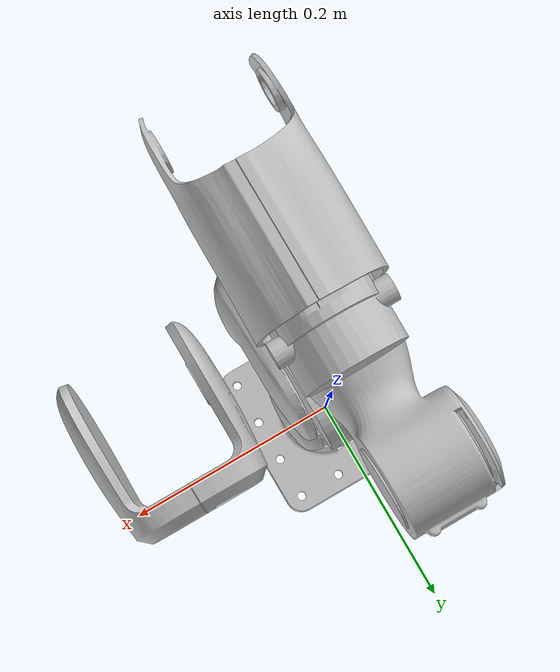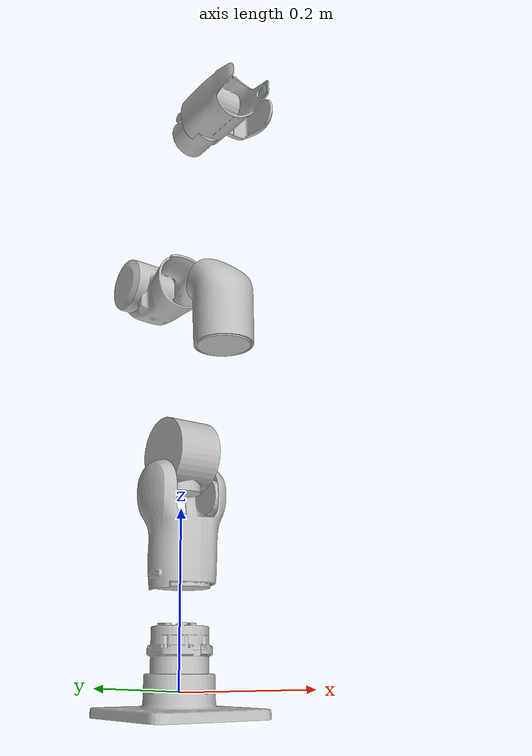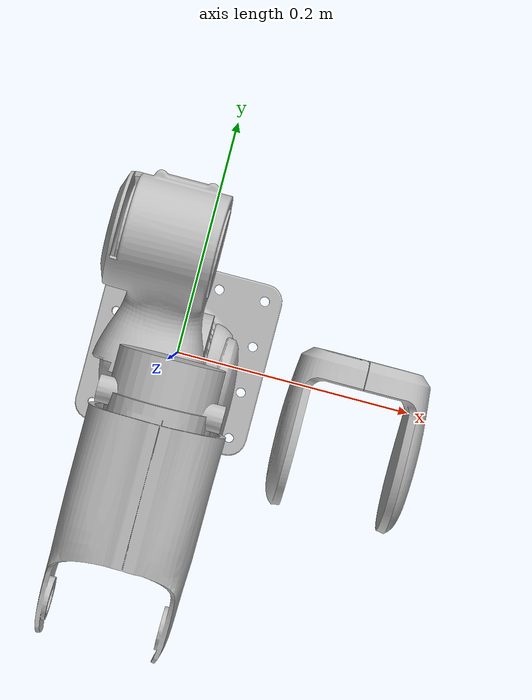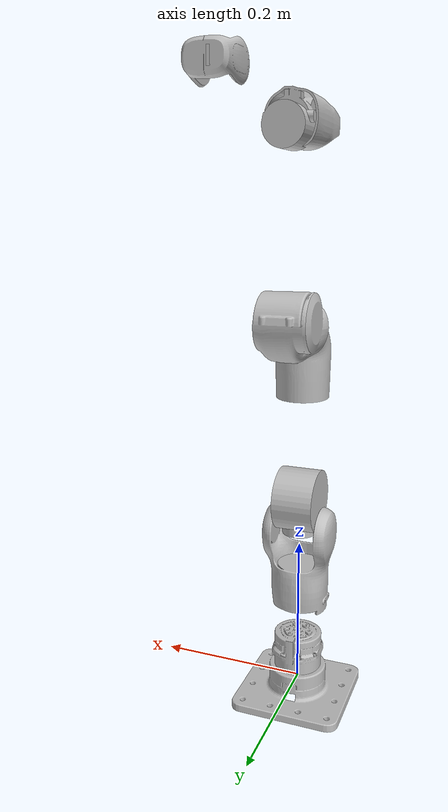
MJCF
<mujoco model="gen72">
  <compiler angle="radian" meshdir="."/>

  <option integrator="implicitfast"/>

  <default>
    <default class="visual">
      <geom type="mesh" contype="0" conaffinity="0" group="2" rgba="0.75294 0.75294 0.75294 1"/>
    </default>
    <default class="collision">
      <geom type="mesh" group="3"/>
    </default>
    <default class="large_actuator">
      <position kp="2000" kv="100" forcerange="-105 105"/>
    </default>
    <default class="small_actuator">
      <position kp="500" kv="50" forcerange="-52 52"/>
    </default>
    <site size="0.001" rgba="0.5 0.5 0.5 0.3" group="4"/>
  </default>

  <asset>
    <mesh name="base_link" file="meshes/base_link.stl"/>
    <mesh name="Link1" file="meshes/Link1.stl"/>
    <mesh name="Link2" file="meshes/Link2.stl"/>
    <mesh name="Link3" file="meshes/Link3.stl"/>
    <mesh name="Link4" file="meshes/Link4.stl"/>
    <mesh name="Link5" file="meshes/Link5.stl"/>
    <mesh name="Link6" file="meshes/Link6.stl"/>
    <mesh name="Link7" file="meshes/Link7.stl"/>
  </asset>

  <worldbody>
    <body name="base_link">
      <inertial pos="0.000608631599856789 0.000101410841223995 0.0500536423028974" mass="0.725732279372378"
        diaginertia="0.00116526259312761 0.00114387939249178 0.000799620765266388"/>
      <geom class="visual" mesh="base_link"/>
      <geom class="collision" mesh="base_link"/>
      <body name="Link1" pos="0 0 0.218">
        <inertial pos="3.54241616240111E-07 -6.0407327765511E-05 -0.0474562076947793" mass="0.511231576042974"
          diaginertia="0.000959440501675413 0.00102039305288465 0.000388714616194907"/>
        <joint name="joint1" axis="0 0 1" range="-3.0014 3.0014"/>
        <geom class="visual" mesh="Link1"/>
        <geom class="collision" mesh="Link1"/>
        <body name="Link2" pos="0 0 0" quat="0.7071068 -0.7071068 0 0">
          <inertial pos="-7.09647952406739E-07 -0.0576246216953338 -3.88440270542586E-05" mass="0.551907023014854"
            diaginertia="0.00142140348660833 0.00052571427239726 0.00127234961251408"/>
          <joint name="joint2" axis="0 0 1" range="-1.8323 1.8323"/>
          <geom class="visual" mesh="Link2"/>
          <geom class="collision" mesh="Link2"/>
          <body name="Link3" pos="0 -0.28 0" quat="0.7071068 0.7071068 0 0">
            <inertial pos="0.00897441376214204 2.62633968732461E-05 -0.07382847021305" mass="0.774130450031718"
              diaginertia="0.00242102073961794 0.00248694314969312 0.000900997189719803"/>
            <joint name="joint3" axis="0 0 1" range="-3.0014 3.0014"/>
            <geom class="visual" mesh="Link3"/>
            <geom class="collision" mesh="Link3"/>
            <body name="Link4" pos="0.04 0 0" quat="0.7071068 0.7071068 0 0">
              <inertial pos="-0.00962438865086499 0.0352034287339324 0.000174576348464699" mass="0.437130215853825"
                diaginertia="0.000866914153248162 0.000267753002587659 0.000952324298928136"/>
              <joint name="joint4" axis="0 0 1" range="-2.8792 0.9597"/>
              <geom class="visual" mesh="Link4"/>
              <geom class="collision" mesh="Link4"/>
              <body name="Link5" pos="-0.019 0.2525 0" quat="0.7071068 -0.7071068 0 0">
                <inertial pos="-4.77956518807332E-07 -3.84737693792594E-05 -0.066955487820054" mass="0.424276753764529"
                  diaginertia="0.0011244489011316 0.00103382374928123 0.000274640088277484"/>
                <joint name="joint5" axis="0 0 1" range="-3.0014 3.0014"/>
                <geom class="visual" mesh="Link5"/>
                <geom class="collision" mesh="Link5"/>
                <body name="Link6" pos="0 0 0" quat="0.7071068 0.7071068 0 0">
                  <inertial pos="0.00184221861298974 0.0379763265035087 -9.21090904324278E-05" mass="0.302793039332829"
                    diaginertia="0.00014011480503376 0.000132631402640971 0.000155721320872423"/>
                  <joint name="joint6" axis="0 0 1" range="-1.707 1.783"/>
                  <geom class="visual" mesh="Link6"/>
                  <geom class="collision" mesh="Link6"/>
                  <body name="Link7" pos="0.0905 0.067 0" quat="0.5 0.5 0.5 0.5">
                    <inertial pos="0.000199884675729955 -4.25081843764018E-08 -0.0292498694019246" mass="0.176612671882913"
                      diaginertia="6.24281233883421E-05 6.24291486534025E-05 8.48642555354654E-05"/>
                    <joint name="joint7" axis="0 0 1" range="-3.0014 3.0014"/>
                    <geom class="visual" mesh="Link7"/>
                    <geom class="collision" mesh="Link7"/>
                    <site name="pinch_site" pos="0 0 -0.05" quat="0 1 0 0"/>
                  </body>
                </body>
              </body>
            </body>
          </body>
        </body>
      </body>
    </body>
  </worldbody>

  <actuator>
    <position class="large_actuator" name="joint1" joint="joint1" ctrlrange="-3.0014 3.0014"/>
    <position class="large_actuator" name="joint2" joint="joint2" ctrlrange="-1.8323 1.8323"/>
    <position class="large_actuator" name="joint3" joint="joint3" ctrlrange="-3.0014 3.0014"/>
    <position class="large_actuator" name="joint4" joint="joint4" ctrlrange="-2.8792 0.9597"/>
    <position class="small_actuator" name="joint5" joint="joint5" ctrlrange="-3.0014 3.0014"/>
    <position class="small_actuator" name="joint6" joint="joint6" ctrlrange="-1.707 1.783"/>
    <position class="small_actuator" name="joint7" joint="joint7" ctrlrange="-3.0014 3.0014"/>
  </actuator>

  <keyframe>
    <key name="home" qpos="0 0 0 0 0 0 0" ctrl="0 0 0 0 0 0 0"/>
    <key name="retract" qpos="-1.5 -0.9 1.0 -0.5 0 0.5 0" ctrl="-1.5 -0.9 1.0 -0.5 0 0.5 0"/>
  </keyframe>
</mujoco>
